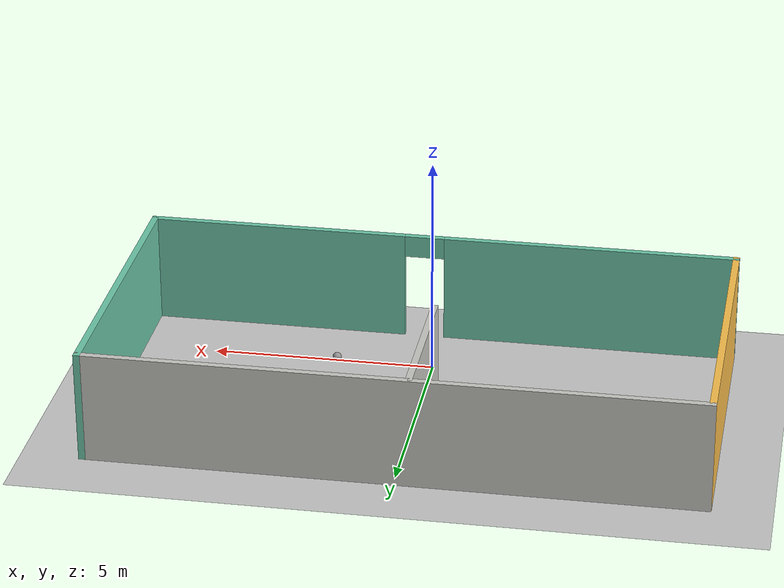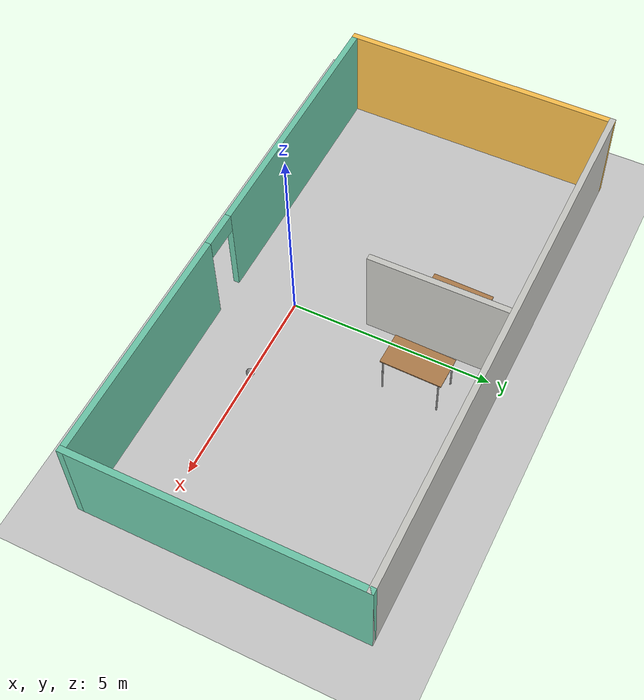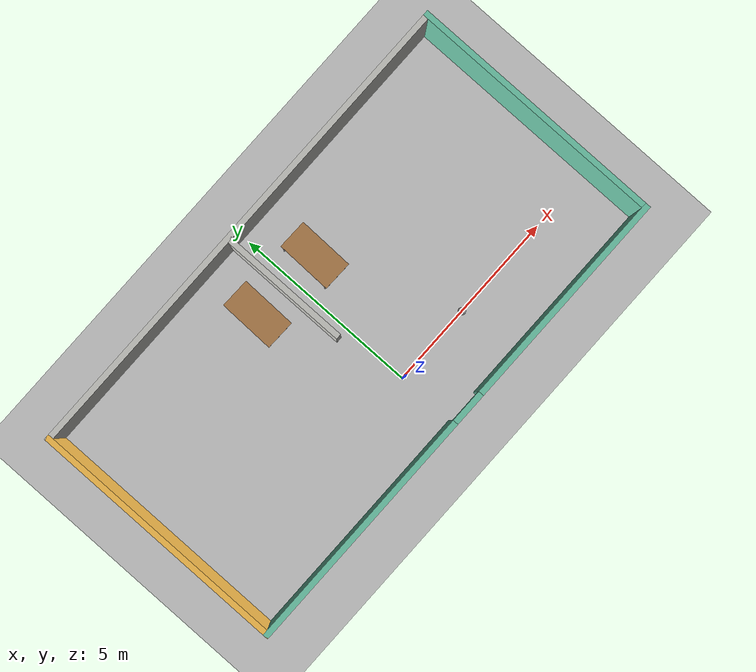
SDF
<sdf version="1.6">
 <world name="default">
  <model name="ground_plane">
   <static>1</static>
   <link name="link">
    <collision name="collision">
     <geometry><plane><normal>0 0 1</normal><size>100 100</size></plane></geometry>
     <surface>
      <contact><collide_bitmask>65535</collide_bitmask></contact>
      <friction><ode><mu>100</mu><mu2>50</mu2></ode></friction>
     </surface>
    </collision>
    <visual name="visual">
     <cast_shadows>0</cast_shadows>
     <geometry><plane><normal>0 0 1</normal><size>100 100</size></plane></geometry>
     <material>
      <script><uri>file://media/materials/scripts/gazebo.material</uri><name>Gazebo/Grey</name></script>
     </material>
    </visual>
   </link>
  </model>
  <model name="prj1_building_door">
   <pose>0.131 1.98296 0 0 -0 0</pose>
   <link name="Wall_0">
    <collision name="Wall_0_Collision">
     <geometry><box><size>7 0.15 2.5</size></box></geometry>
     <pose>0 0 1.25 0 -0 0</pose>
    </collision>
    <visual name="Wall_0_Visual">
     <pose>0 0 1.25 0 -0 0</pose>
     <geometry><box><size>7 0.15 2.5</size></box></geometry>
     <material>
      <script><uri>file://media/materials/scripts/gazebo.material</uri><name>Gazebo/Grey</name></script>
      <ambient>1 0.764706 0.305882 1</ambient>
     </material>
     <meta><layer>0</layer></meta>
    </visual>
    <pose>-6.7525 -0.1625 0 0 -0 1.5708</pose>
   </link>
   <link name="Wall_1">
    <collision name="Wall_1_Collision">
     <geometry><box><size>13.5 0.15 2.5</size></box></geometry>
     <pose>0 0 1.25 0 -0 0</pose>
    </collision>
    <visual name="Wall_1_Visual">
     <pose>0 0 1.25 0 -0 0</pose>
     <geometry><box><size>13.5 0.15 2.5</size></box></geometry>
     <material>
      <script><uri>file://media/materials/scripts/gazebo.material</uri><name>Gazebo/CeilingTiled</name></script>
      <ambient>1 0.764706 0.305882 1</ambient>
     </material>
     <meta><layer>0</layer></meta>
    </visual>
    <pose>-0.0775 3.2625 0 0 -0 0</pose>
   </link>
   <link name="Wall_2">
    <collision name="Wall_2_Collision">
     <geometry><box><size>7 0.15 2.5</size></box></geometry>
     <pose>0 0 1.25 0 -0 0</pose>
    </collision>
    <visual name="Wall_2_Visual">
     <pose>0 0 1.25 0 -0 0</pose>
     <geometry><box><size>7 0.15 2.5</size></box></geometry>
     <material>
      <script><uri>file://media/materials/scripts/gazebo.material</uri><name>Gazebo/Grey</name></script>
      <ambient>0.435294 0.796078 0.67451 1</ambient>
     </material>
     <meta><layer>0</layer></meta>
    </visual>
    <pose>6.5975 -0.1625 0 0 -0 -1.5708</pose>
   </link>
   <link name="Wall_6">
    <pose>-0.0775 -3.5875 0 0 -0 0</pose>
    <visual name="Wall_6_Visual_0">
     <pose>-3.4075 0 1.25 0 -0 0</pose>
     <geometry><box><size>6.685 0.15 2.5</size></box></geometry>
     <material>
      <script><uri>file://media/materials/scripts/gazebo.material</uri><name>Gazebo/Grey</name></script>
      <ambient>0.435294 0.796078 0.67451 1</ambient>
     </material>
     <meta><layer>0</layer></meta>
    </visual>
    <collision name="Wall_6_Collision_0">
     <geometry><box><size>6.685 0.15 2.5</size></box></geometry>
     <pose>-3.4075 0 1.25 0 -0 0</pose>
    </collision>
    <visual name="Wall_6_Visual_1">
     <pose>3.7925 0 1.25 0 -0 0</pose>
     <geometry><box><size>5.915 0.15 2.5</size></box></geometry>
     <material>
      <script><uri>file://media/materials/scripts/gazebo.material</uri><name>Gazebo/Grey</name></script>
      <ambient>0.435294 0.796078 0.67451 1</ambient>
     </material>
     <meta><layer>0</layer></meta>
    </visual>
    <collision name="Wall_6_Collision_1">
     <geometry><box><size>5.915 0.15 2.5</size></box></geometry>
     <pose>3.7925 0 1.25 0 -0 0</pose>
    </collision>
    <visual name="Wall_6_Visual_2">
     <pose>0.385 0 2.25 0 -0 0</pose>
     <geometry><box><size>0.9 0.15 0.5</size></box></geometry>
     <material>
      <script><uri>file://media/materials/scripts/gazebo.material</uri><name>Gazebo/Grey</name></script>
      <ambient>0.435294 0.796078 0.67451 1</ambient>
     </material>
     <meta><layer>0</layer></meta>
    </visual>
    <collision name="Wall_6_Collision_2">
     <geometry><box><size>0.9 0.15 0.5</size></box></geometry>
     <pose>0.385 0 2.25 0 -0 0</pose>
    </collision>
   </link>
   <link name="Wall_8">
    <collision name="Wall_8_Collision">
     <geometry><box><size>3.5 0.15 2.5</size></box></geometry>
     <pose>0 0 1.25 0 -0 0</pose>
    </collision>
    <visual name="Wall_8_Visual">
     <pose>0 0 1.25 0 -0 0</pose>
     <geometry><box><size>3.5 0.15 2.5</size></box></geometry>
     <material>
      <script><uri>file://media/materials/scripts/gazebo.material</uri><name>Gazebo/CeilingTiled</name></script>
      <ambient>1 0.764706 0.305882 1</ambient>
     </material>
     <meta><layer>0</layer></meta>
    </visual>
    <pose>-0.4625 1.5375 0 0 -0 -1.5708</pose>
   </link>
   <static>1</static>
  </model>
  <model name="table">
   <static>1</static>
   <link name="link">
    <collision name="surface">
     <pose>0 0 1 0 -0 0</pose>
     <geometry><box><size>1.5 0.8 0.03</size></box></geometry>
     <surface><friction><ode><mu>0.6</mu><mu2>0.6</mu2></ode></friction></surface>
    </collision>
    <visual name="visual1">
     <pose>0 0 1 0 -0 0</pose>
     <geometry><box><size>1.5 0.8 0.03</size></box></geometry>
     <material>
      <script><uri>file://media/materials/scripts/gazebo.material</uri><name>Gazebo/Wood</name></script>
     </material>
    </visual>
    <collision name="front_left_leg">
     <pose>0.68 0.38 0.5 0 -0 0</pose>
     <geometry><cylinder><radius>0.02</radius><length>1</length></cylinder></geometry>
    </collision>
    <visual name="front_left_leg">
     <pose>0.68 0.38 0.5 0 -0 0</pose>
     <geometry><cylinder><radius>0.02</radius><length>1</length></cylinder></geometry>
     <material>
      <script><uri>file://media/materials/scripts/gazebo.material</uri><name>Gazebo/Grey</name></script>
     </material>
    </visual>
    <collision name="front_right_leg">
     <pose>0.68 -0.38 0.5 0 -0 0</pose>
     <geometry><cylinder><radius>0.02</radius><length>1</length></cylinder></geometry>
    </collision>
    <visual name="front_right_leg">
     <pose>0.68 -0.38 0.5 0 -0 0</pose>
     <geometry><cylinder><radius>0.02</radius><length>1</length></cylinder></geometry>
     <material>
      <script><uri>file://media/materials/scripts/gazebo.material</uri><name>Gazebo/Grey</name></script>
     </material>
    </visual>
    <collision name="back_right_leg">
     <pose>-0.68 -0.38 0.5 0 -0 0</pose>
     <geometry><cylinder><radius>0.02</radius><length>1</length></cylinder></geometry>
    </collision>
    <visual name="back_right_leg">
     <pose>-0.68 -0.38 0.5 0 -0 0</pose>
     <geometry><cylinder><radius>0.02</radius><length>1</length></cylinder></geometry>
     <material>
      <script><uri>file://media/materials/scripts/gazebo.material</uri><name>Gazebo/Grey</name></script>
     </material>
    </visual>
    <collision name="back_left_leg">
     <pose>-0.68 0.38 0.5 0 -0 0</pose>
     <geometry><cylinder><radius>0.02</radius><length>1</length></cylinder></geometry>
    </collision>
    <visual name="back_left_leg">
     <pose>-0.68 0.38 0.5 0 -0 0</pose>
     <geometry><cylinder><radius>0.02</radius><length>1</length></cylinder></geometry>
     <material>
      <script><uri>file://media/materials/scripts/gazebo.material</uri><name>Gazebo/Grey</name></script>
     </material>
    </visual>
   </link>
   <pose>0.787614 3.54326 0 0 0 -1.59173</pose>
  </model>
  <model name="table_clone">
   <static>1</static>
   <link name="link">
    <collision name="surface">
     <pose>0 0 1 0 -0 0</pose>
     <geometry><box><size>1.5 0.8 0.03</size></box></geometry>
     <surface><friction><ode><mu>0.6</mu><mu2>0.6</mu2></ode></friction></surface>
    </collision>
    <visual name="visual1">
     <pose>0 0 1 0 -0 0</pose>
     <geometry><box><size>1.5 0.8 0.03</size></box></geometry>
     <material>
      <script><uri>file://media/materials/scripts/gazebo.material</uri><name>Gazebo/Wood</name></script>
     </material>
    </visual>
    <collision name="front_left_leg">
     <pose>0.68 0.38 0.5 0 -0 0</pose>
     <geometry><cylinder><radius>0.02</radius><length>1</length></cylinder></geometry>
    </collision>
    <visual name="front_left_leg">
     <pose>0.68 0.38 0.5 0 -0 0</pose>
     <geometry><cylinder><radius>0.02</radius><length>1</length></cylinder></geometry>
     <material>
      <script><uri>file://media/materials/scripts/gazebo.material</uri><name>Gazebo/Grey</name></script>
     </material>
    </visual>
    <collision name="front_right_leg">
     <pose>0.68 -0.38 0.5 0 -0 0</pose>
     <geometry><cylinder><radius>0.02</radius><length>1</length></cylinder></geometry>
    </collision>
    <visual name="front_right_leg">
     <pose>0.68 -0.38 0.5 0 -0 0</pose>
     <geometry><cylinder><radius>0.02</radius><length>1</length></cylinder></geometry>
     <material>
      <script><uri>file://media/materials/scripts/gazebo.material</uri><name>Gazebo/Grey</name></script>
     </material>
    </visual>
    <collision name="back_right_leg">
     <pose>-0.68 -0.38 0.5 0 -0 0</pose>
     <geometry><cylinder><radius>0.02</radius><length>1</length></cylinder></geometry>
    </collision>
    <visual name="back_right_leg">
     <pose>-0.68 -0.38 0.5 0 -0 0</pose>
     <geometry><cylinder><radius>0.02</radius><length>1</length></cylinder></geometry>
     <material>
      <script><uri>file://media/materials/scripts/gazebo.material</uri><name>Gazebo/Grey</name></script>
     </material>
    </visual>
    <collision name="back_left_leg">
     <pose>-0.68 0.38 0.5 0 -0 0</pose>
     <geometry><cylinder><radius>0.02</radius><length>1</length></cylinder></geometry>
    </collision>
    <visual name="back_left_leg">
     <pose>-0.68 0.38 0.5 0 -0 0</pose>
     <geometry><cylinder><radius>0.02</radius><length>1</length></cylinder></geometry>
     <material>
      <script><uri>file://media/materials/scripts/gazebo.material</uri><name>Gazebo/Grey</name></script>
     </material>
    </visual>
   </link>
   <pose>-1.19005 3.62872 0 0 0 -1.59173</pose>
  </model>
  <model name="my_ball">
   <link name="link_0">
    <inertial>
     <mass>1</mass>
     <inertia><ixx>0.1</ixx><ixy>0</ixy><ixz>0</ixz><iyy>0.1</iyy><iyz>0</iyz><izz>0.1</izz></inertia>
    </inertial>
    <visual name="visual">
     <geometry><sphere><radius>0.1</radius></sphere></geometry>
     <material>
      <lighting>1</lighting>
      <script><uri>file://media/materials/scripts/gazebo.material</uri><name>Gazebo/Grey</name></script>
      <ambient>1 1 1 1</ambient>
      <diffuse>1 1 1 1</diffuse>
      <specular>1 1 1 1</specular>
      <emissive>1 1 1 1</emissive>
      <shader type="vertex"><normal_map>__default__</normal_map></shader>
     </material>
    </visual>
    <collision name="collision">
     <geometry><sphere><radius>0.1</radius></sphere></geometry>
     <surface>
      <friction>
       <ode><mu>1</mu><mu2>1</mu2><fdir1>0 0 0</fdir1><slip1>0</slip1><slip2>0</slip2></ode>
       <torsional>
        <coefficient>1</coefficient>
        <patch_radius>0</patch_radius>
        <surface_radius>0</surface_radius>
        <use_patch_radius>1</use_patch_radius>
        <ode><slip>0</slip></ode>
       </torsional>
      </friction>
      <bounce><restitution_coefficient>0</restitution_coefficient><threshold>1e+06</threshold></bounce>
      <contact>
       <collide_without_contact>0</collide_without_contact>
       <collide_without_contact_bitmask>1</collide_without_contact_bitmask>
       <collide_bitmask>1</collide_bitmask>
       <ode>
        <soft_cfm>0</soft_cfm>
        <soft_erp>0.2</soft_erp>
        <kp>1e+13</kp>
        <kd>1</kd>
        <max_vel>0.01</max_vel>
        <min_depth>0</min_depth>
       </ode>
       <bullet>
        <split_impulse>1</split_impulse>
        <split_impulse_penetration_threshold>-0.01</split_impulse_penetration_threshold>
        <soft_cfm>0</soft_cfm>
        <soft_erp>0.2</soft_erp>
        <kp>1e+13</kp>
        <kd>1</kd>
       </bullet>
      </contact>
     </surface>
    </collision>
   </link>
   <static>0</static>
   <pose>2.19463 -0.00395 0.1 0 -0 0</pose>
  </model>
 </world>
</sdf>
